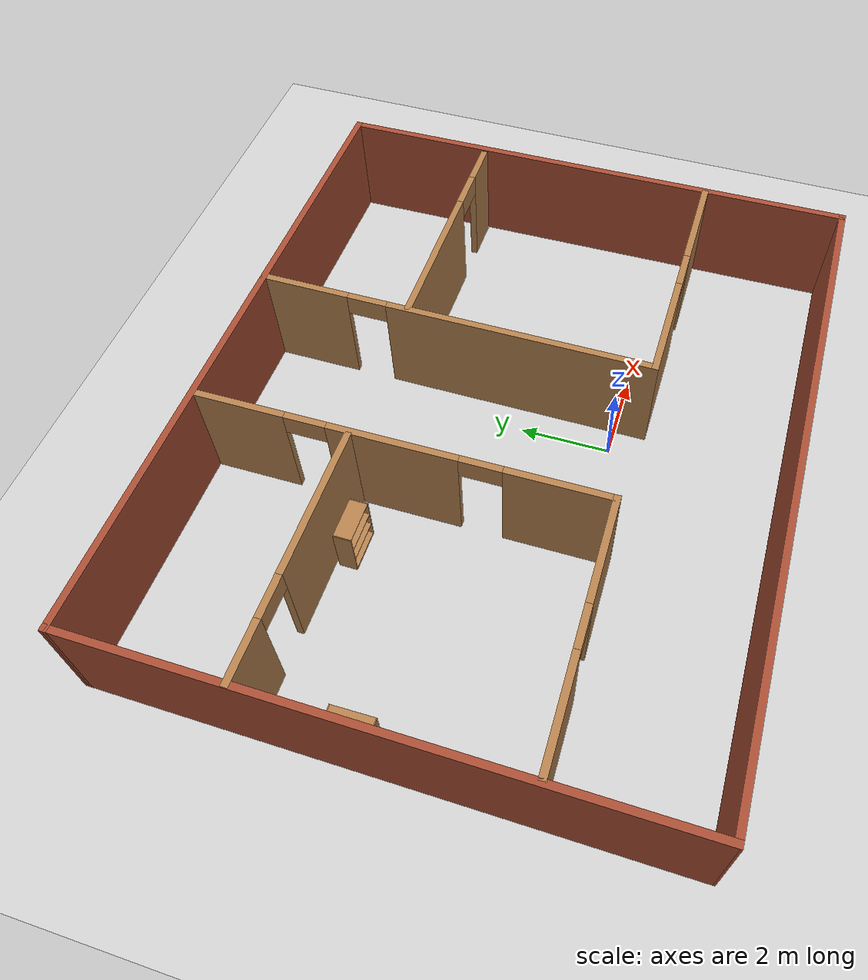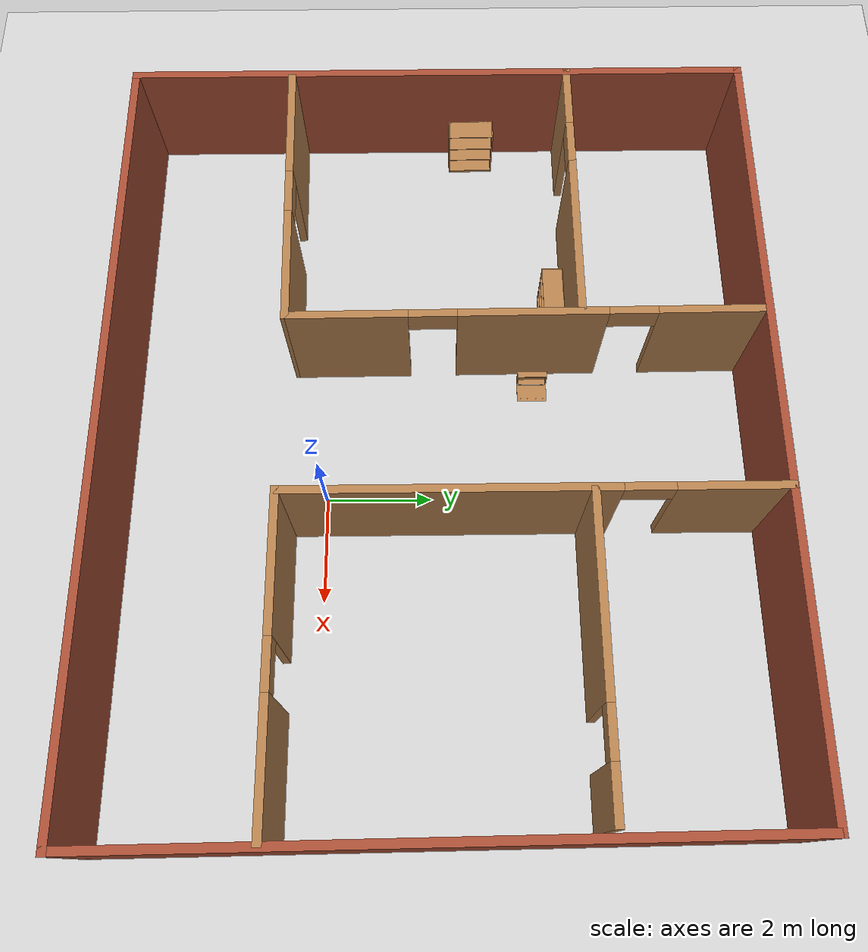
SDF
<sdf version="1.7">
 <world name="default">
  <light name="sun" type="directional">
   <pose>0 0 10 0 -0 0</pose>
   <diffuse>0.8 0.8 0.8 1</diffuse>
   <specular>0.2 0.2 0.2 1</specular>
   <attenuation>
    <range>1000</range>
    <constant>0.9</constant>
    <linear>0.01</linear>
    <quadratic>0.001</quadratic>
   </attenuation>
   <direction>-0.5 0.1 -0.9</direction>
   <spot><inner_angle>0</inner_angle><outer_angle>0</outer_angle><falloff>0</falloff></spot>
  </light>
  <model name="ground_plane">
   <static>1</static>
   <link name="link">
    <collision name="collision">
     <geometry><plane><normal>0 0 1</normal><size>100 100</size></plane></geometry>
     <surface>
      <contact><collide_bitmask>65535</collide_bitmask></contact>
      <friction><ode><mu>100</mu><mu2>50</mu2></ode></friction>
     </surface>
    </collision>
    <visual name="visual">
     <cast_shadows>0</cast_shadows>
     <geometry><plane><normal>0 0 1</normal><size>100 100</size></plane></geometry>
     <material>
      <script><uri>file://media/materials/scripts/gazebo.material</uri><name>Gazebo/Grey</name></script>
     </material>
    </visual>
   </link>
  </model>
  <gravity>0 0 -9.8</gravity>
  <magnetic_field>6e-06 2.3e-05 -4.2e-05</magnetic_field>
  <atmosphere type="adiabatic"/>
  <physics type="ode">
   <max_step_size>0.001</max_step_size>
   <real_time_factor>1</real_time_factor>
   <real_time_update_rate>1000</real_time_update_rate>
  </physics>
  <scene><ambient>0.4 0.4 0.4 1</ambient><background>0.7 0.7 0.7 1</background><shadows>1</shadows></scene>
  <audio><device>default</device></audio>
  <spherical_coordinates>
   <surface_model>EARTH_WGS84</surface_model>
   <latitude_deg>0</latitude_deg>
   <longitude_deg>0</longitude_deg>
   <elevation>0</elevation>
   <heading_deg>0</heading_deg>
  </spherical_coordinates>
  <model name="my_floor">
   <pose>-0.940215 2.19561 0.00367 0 -0 0</pose>
   <link name="Wall_0">
    <collision name="Wall_0_Collision">
     <geometry><box><size>12.25 0.15 2.5</size></box></geometry>
     <pose>0 0 1.25 0 -0 0</pose>
    </collision>
    <visual name="Wall_0_Visual">
     <pose>0 0 1.25 0 -0 0</pose>
     <geometry><box><size>12.25 0.15 2.5</size></box></geometry>
     <material>
      <script><uri>file://media/materials/scripts/gazebo.material</uri><name>Gazebo/Bricks</name></script>
      <ambient>1 1 1 1</ambient>
     </material>
     <meta><layer>0</layer></meta>
    </visual>
    <pose>-7.28239 0.011244 0 0 -0 -1.5708</pose>
   </link>
   <link name="Wall_1">
    <collision name="Wall_1_Collision">
     <geometry><box><size>14.7143 0.15 2.5</size></box></geometry>
     <pose>0 0 1.25 0 -0 0</pose>
    </collision>
    <visual name="Wall_1_Visual">
     <pose>0 0 1.25 0 -0 0</pose>
     <geometry><box><size>14.7143 0.15 2.5</size></box></geometry>
     <material>
      <script><uri>file://media/materials/scripts/gazebo.material</uri><name>Gazebo/Bricks</name></script>
      <ambient>1 1 1 1</ambient>
     </material>
     <meta><layer>0</layer></meta>
    </visual>
    <pose>-0.000225 -6.04978 0 0 -0 -0.001513</pose>
   </link>
   <link name="Wall_11">
    <pose>1.58107 1.58197 0 0 -0 -1.5708</pose>
    <visual name="Wall_11_Visual_0">
     <pose>-3.46708 0 1.25 0 -0 0</pose>
     <geometry><box><size>2.06583 0.15 2.5</size></box></geometry>
     <material>
      <script><uri>file://media/materials/scripts/gazebo.material</uri><name>Gazebo/Wood</name></script>
      <ambient>1 1 1 1</ambient>
     </material>
     <meta><layer>0</layer></meta>
    </visual>
    <collision name="Wall_11_Collision_0">
     <geometry><box><size>2.06583 0.15 2.5</size></box></geometry>
     <pose>-3.46708 0 1.25 0 -0 0</pose>
    </collision>
    <visual name="Wall_11_Visual_1">
     <pose>1.48291 0 1.25 0 -0 0</pose>
     <geometry><box><size>6.03417 0.15 2.5</size></box></geometry>
     <material>
      <script><uri>file://media/materials/scripts/gazebo.material</uri><name>Gazebo/Wood</name></script>
      <ambient>1 1 1 1</ambient>
     </material>
     <meta><layer>0</layer></meta>
    </visual>
    <collision name="Wall_11_Collision_1">
     <geometry><box><size>6.03417 0.15 2.5</size></box></geometry>
     <pose>1.48291 0 1.25 0 -0 0</pose>
    </collision>
    <visual name="Wall_11_Visual_2">
     <pose>-1.98417 0 2.25 0 -0 0</pose>
     <geometry><box><size>0.9 0.15 0.5</size></box></geometry>
     <material>
      <script><uri>file://media/materials/scripts/gazebo.material</uri><name>Gazebo/Wood</name></script>
      <ambient>1 1 1 1</ambient>
     </material>
     <meta><layer>0</layer></meta>
    </visual>
    <collision name="Wall_11_Collision_2">
     <geometry><box><size>0.9 0.15 0.5</size></box></geometry>
     <pose>-1.98417 0 2.25 0 -0 0</pose>
    </collision>
   </link>
   <link name="Wall_12">
    <pose>4.38107 -2.84303 0 0 -0 0</pose>
    <visual name="Wall_12_Visual_0">
     <pose>-1.59421 0 1.25 0 -0 0</pose>
     <geometry><box><size>2.56158 0.15 2.5</size></box></geometry>
     <material>
      <script><uri>file://media/materials/scripts/gazebo.material</uri><name>Gazebo/Wood</name></script>
      <ambient>1 1 1 1</ambient>
     </material>
     <meta><layer>0</layer></meta>
    </visual>
    <collision name="Wall_12_Collision_0">
     <geometry><box><size>2.56158 0.15 2.5</size></box></geometry>
     <pose>-1.59421 0 1.25 0 -0 0</pose>
    </collision>
    <visual name="Wall_12_Visual_1">
     <pose>1.73079 0 1.25 0 -0 0</pose>
     <geometry><box><size>2.28842 0.15 2.5</size></box></geometry>
     <material>
      <script><uri>file://media/materials/scripts/gazebo.material</uri><name>Gazebo/Wood</name></script>
      <ambient>1 1 1 1</ambient>
     </material>
     <meta><layer>0</layer></meta>
    </visual>
    <collision name="Wall_12_Collision_1">
     <geometry><box><size>2.28842 0.15 2.5</size></box></geometry>
     <pose>1.73079 0 1.25 0 -0 0</pose>
    </collision>
    <visual name="Wall_12_Visual_2">
     <pose>0.136581 0 2.25 0 -0 0</pose>
     <geometry><box><size>0.9 0.15 0.5</size></box></geometry>
     <material>
      <script><uri>file://media/materials/scripts/gazebo.material</uri><name>Gazebo/Wood</name></script>
      <ambient>1 1 1 1</ambient>
     </material>
     <meta><layer>0</layer></meta>
    </visual>
    <collision name="Wall_12_Collision_2">
     <geometry><box><size>0.9 0.15 0.5</size></box></geometry>
     <pose>0.136581 0 2.25 0 -0 0</pose>
    </collision>
   </link>
   <link name="Wall_14">
    <pose>4.31641 2.62789 0 0 -0 0</pose>
    <visual name="Wall_14_Visual_0">
     <pose>-0.946256 0 1.25 0 -0 0</pose>
     <geometry><box><size>3.60749 0.15 2.5</size></box></geometry>
     <material>
      <script><uri>file://media/materials/scripts/gazebo.material</uri><name>Gazebo/Wood</name></script>
      <ambient>1 1 1 1</ambient>
     </material>
     <meta><layer>0</layer></meta>
    </visual>
    <collision name="Wall_14_Collision_0">
     <geometry><box><size>3.60749 0.15 2.5</size></box></geometry>
     <pose>-0.946256 0 1.25 0 -0 0</pose>
    </collision>
    <visual name="Wall_14_Visual_1">
     <pose>2.25374 0 1.25 0 -0 0</pose>
     <geometry><box><size>0.992513 0.15 2.5</size></box></geometry>
     <material>
      <script><uri>file://media/materials/scripts/gazebo.material</uri><name>Gazebo/Wood</name></script>
      <ambient>1 1 1 1</ambient>
     </material>
     <meta><layer>0</layer></meta>
    </visual>
    <collision name="Wall_14_Collision_1">
     <geometry><box><size>0.992513 0.15 2.5</size></box></geometry>
     <pose>2.25374 0 1.25 0 -0 0</pose>
    </collision>
    <visual name="Wall_14_Visual_2">
     <pose>1.30749 0 2.25 0 -0 0</pose>
     <geometry><box><size>0.9 0.15 0.5</size></box></geometry>
     <material>
      <script><uri>file://media/materials/scripts/gazebo.material</uri><name>Gazebo/Wood</name></script>
      <ambient>1 1 1 1</ambient>
     </material>
     <meta><layer>0</layer></meta>
    </visual>
    <collision name="Wall_14_Collision_2">
     <geometry><box><size>0.9 0.15 0.5</size></box></geometry>
     <pose>1.30749 0 2.25 0 -0 0</pose>
    </collision>
   </link>
   <link name="Wall_2">
    <collision name="Wall_2_Collision">
     <geometry><box><size>12.2006 0.15 2.5</size></box></geometry>
     <pose>0 0 1.25 0 -0 0</pose>
    </collision>
    <visual name="Wall_2_Visual">
     <pose>0 0 1.25 0 -0 0</pose>
     <geometry><box><size>12.2006 0.15 2.5</size></box></geometry>
     <material>
      <script><uri>file://media/materials/scripts/gazebo.material</uri><name>Gazebo/Bricks</name></script>
      <ambient>1 1 1 1</ambient>
     </material>
     <meta><layer>0</layer></meta>
    </visual>
    <pose>7.21544 -0.03585 0 0 -0 1.58183</pose>
   </link>
   <link name="Wall_3">
    <collision name="Wall_3_Collision">
     <geometry><box><size>14.5815 0.15 2.5</size></box></geometry>
     <pose>0 0 1.25 0 -0 0</pose>
    </collision>
    <visual name="Wall_3_Visual">
     <pose>0 0 1.25 0 -0 0</pose>
     <geometry><box><size>14.5815 0.15 2.5</size></box></geometry>
     <material>
      <script><uri>file://media/materials/scripts/gazebo.material</uri><name>Gazebo/Bricks</name></script>
      <ambient>1 1 1 1</ambient>
     </material>
     <meta><layer>0</layer></meta>
    </visual>
    <pose>-0.066725 6.02517 0 0 -0 3.13659</pose>
   </link>
   <link name="Wall_5">
    <pose>-1.80807 1.57193 0 0 -0 -1.56393</pose>
    <visual name="Wall_5_Visual_0">
     <pose>-3.45113 0 1.25 0 -0 0</pose>
     <geometry><box><size>2.03819 0.15 2.5</size></box></geometry>
     <material>
      <script><uri>file://media/materials/scripts/gazebo.material</uri><name>Gazebo/Wood</name></script>
      <ambient>1 1 1 1</ambient>
     </material>
     <meta><layer>0</layer></meta>
    </visual>
    <collision name="Wall_5_Collision_0">
     <geometry><box><size>2.03819 0.15 2.5</size></box></geometry>
     <pose>-3.45113 0 1.25 0 -0 0</pose>
    </collision>
    <visual name="Wall_5_Visual_1">
     <pose>-0.142034 0 1.25 0 -0 0</pose>
     <geometry><box><size>2.78001 0.15 2.5</size></box></geometry>
     <material>
      <script><uri>file://media/materials/scripts/gazebo.material</uri><name>Gazebo/Wood</name></script>
      <ambient>1 1 1 1</ambient>
     </material>
     <meta><layer>0</layer></meta>
    </visual>
    <collision name="Wall_5_Collision_1">
     <geometry><box><size>2.78001 0.15 2.5</size></box></geometry>
     <pose>-0.142034 0 1.25 0 -0 0</pose>
    </collision>
    <visual name="Wall_5_Visual_2">
     <pose>3.3091 0 1.25 0 -0 0</pose>
     <geometry><box><size>2.32226 0.15 2.5</size></box></geometry>
     <material>
      <script><uri>file://media/materials/scripts/gazebo.material</uri><name>Gazebo/Wood</name></script>
      <ambient>1 1 1 1</ambient>
     </material>
     <meta><layer>0</layer></meta>
    </visual>
    <collision name="Wall_5_Collision_2">
     <geometry><box><size>2.32226 0.15 2.5</size></box></geometry>
     <pose>3.3091 0 1.25 0 -0 0</pose>
    </collision>
    <visual name="Wall_5_Visual_3">
     <pose>-1.98204 0 2.25 0 -0 0</pose>
     <geometry><box><size>0.9 0.15 0.5</size></box></geometry>
     <material>
      <script><uri>file://media/materials/scripts/gazebo.material</uri><name>Gazebo/Wood</name></script>
      <ambient>1 1 1 1</ambient>
     </material>
     <meta><layer>0</layer></meta>
    </visual>
    <collision name="Wall_5_Collision_3">
     <geometry><box><size>0.9 0.15 0.5</size></box></geometry>
     <pose>-1.98204 0 2.25 0 -0 0</pose>
    </collision>
    <visual name="Wall_5_Visual_4">
     <pose>1.69797 0 2.25 0 -0 0</pose>
     <geometry><box><size>0.9 0.15 0.5</size></box></geometry>
     <material>
      <script><uri>file://media/materials/scripts/gazebo.material</uri><name>Gazebo/Wood</name></script>
      <ambient>1 1 1 1</ambient>
     </material>
     <meta><layer>0</layer></meta>
    </visual>
    <collision name="Wall_5_Collision_4">
     <geometry><box><size>0.9 0.15 0.5</size></box></geometry>
     <pose>1.69797 0 2.25 0 -0 0</pose>
    </collision>
   </link>
   <link name="Wall_6">
    <pose>-4.48318 -2.86312 0 0 -0 -3.12672</pose>
    <visual name="Wall_6_Visual_0">
     <pose>-1.6122 0 1.25 0 -0 0</pose>
     <geometry><box><size>2.33674 0.15 2.5</size></box></geometry>
     <material>
      <script><uri>file://media/materials/scripts/gazebo.material</uri><name>Gazebo/Wood</name></script>
      <ambient>1 1 1 1</ambient>
     </material>
     <meta><layer>0</layer></meta>
    </visual>
    <collision name="Wall_6_Collision_0">
     <geometry><box><size>2.33674 0.15 2.5</size></box></geometry>
     <pose>-1.6122 0 1.25 0 -0 0</pose>
    </collision>
    <visual name="Wall_6_Visual_1">
     <pose>1.61837 0 1.25 0 -0 0</pose>
     <geometry><box><size>2.32441 0.15 2.5</size></box></geometry>
     <material>
      <script><uri>file://media/materials/scripts/gazebo.material</uri><name>Gazebo/Wood</name></script>
      <ambient>1 1 1 1</ambient>
     </material>
     <meta><layer>0</layer></meta>
    </visual>
    <collision name="Wall_6_Collision_1">
     <geometry><box><size>2.32441 0.15 2.5</size></box></geometry>
     <pose>1.61837 0 1.25 0 -0 0</pose>
    </collision>
    <visual name="Wall_6_Visual_2">
     <pose>0.006168 0 2.25 0 -0 0</pose>
     <geometry><box><size>0.9 0.15 0.5</size></box></geometry>
     <material>
      <script><uri>file://media/materials/scripts/gazebo.material</uri><name>Gazebo/Wood</name></script>
      <ambient>1 1 1 1</ambient>
     </material>
     <meta><layer>0</layer></meta>
    </visual>
    <collision name="Wall_6_Collision_2">
     <geometry><box><size>0.9 0.15 0.5</size></box></geometry>
     <pose>0.006168 0 2.25 0 -0 0</pose>
    </collision>
   </link>
   <link name="Wall_9">
    <pose>-4.59391 2.60778 0 0 -0 0</pose>
    <visual name="Wall_9_Visual_0">
     <pose>-2.09273 0 1.25 0 -0 0</pose>
     <geometry><box><size>1.31454 0.15 2.5</size></box></geometry>
     <material>
      <script><uri>file://media/materials/scripts/gazebo.material</uri><name>Gazebo/Wood</name></script>
      <ambient>1 1 1 1</ambient>
     </material>
     <meta><layer>0</layer></meta>
    </visual>
    <collision name="Wall_9_Collision_0">
     <geometry><box><size>1.31454 0.15 2.5</size></box></geometry>
     <pose>-2.09273 0 1.25 0 -0 0</pose>
    </collision>
    <visual name="Wall_9_Visual_1">
     <pose>1.10727 0 1.25 0 -0 0</pose>
     <geometry><box><size>3.28546 0.15 2.5</size></box></geometry>
     <material>
      <script><uri>file://media/materials/scripts/gazebo.material</uri><name>Gazebo/Wood</name></script>
      <ambient>1 1 1 1</ambient>
     </material>
     <meta><layer>0</layer></meta>
    </visual>
    <collision name="Wall_9_Collision_1">
     <geometry><box><size>3.28546 0.15 2.5</size></box></geometry>
     <pose>1.10727 0 1.25 0 -0 0</pose>
    </collision>
    <visual name="Wall_9_Visual_2">
     <pose>-0.98546 0 2.25 0 -0 0</pose>
     <geometry><box><size>0.9 0.15 0.5</size></box></geometry>
     <material>
      <script><uri>file://media/materials/scripts/gazebo.material</uri><name>Gazebo/Wood</name></script>
      <ambient>1 1 1 1</ambient>
     </material>
     <meta><layer>0</layer></meta>
    </visual>
    <collision name="Wall_9_Collision_2">
     <geometry><box><size>0.9 0.15 0.5</size></box></geometry>
     <pose>-0.98546 0 2.25 0 -0 0</pose>
    </collision>
   </link>
   <static>1</static>
  </model>
  <model name="bookshelf">
   <static>1</static>
   <link name="link">
    <inertial><mass>1</mass></inertial>
    <collision name="back">
     <pose>0 0.005 0.6 0 -0 0</pose>
     <geometry><box><size>0.9 0.01 1.2</size></box></geometry>
    </collision>
    <visual name="visual1">
     <pose>0 0.005 0.6 0 -0 0</pose>
     <geometry><box><size>0.9 0.01 1.2</size></box></geometry>
     <material>
      <script><uri>file://media/materials/scripts/gazebo.material</uri><name>Gazebo/Wood</name></script>
     </material>
    </visual>
    <collision name="left_side">
     <pose>0.45 -0.195 0.6 0 -0 0</pose>
     <geometry><box><size>0.02 0.4 1.2</size></box></geometry>
    </collision>
    <visual name="visual2">
     <pose>0.45 -0.195 0.6 0 -0 0</pose>
     <geometry><box><size>0.02 0.4 1.2</size></box></geometry>
     <material>
      <script><uri>file://media/materials/scripts/gazebo.material</uri><name>Gazebo/Wood</name></script>
     </material>
    </visual>
    <collision name="right_side">
     <pose>-0.45 -0.195 0.6 0 -0 0</pose>
     <geometry><box><size>0.02 0.4 1.2</size></box></geometry>
    </collision>
    <visual name="visual3">
     <pose>-0.45 -0.195 0.6 0 -0 0</pose>
     <geometry><box><size>0.02 0.4 1.2</size></box></geometry>
     <material>
      <script><uri>file://media/materials/scripts/gazebo.material</uri><name>Gazebo/Wood</name></script>
     </material>
    </visual>
    <collision name="bottom">
     <pose>0 -0.195 0.03 0 -0 0</pose>
     <geometry><box><size>0.88 0.4 0.06</size></box></geometry>
    </collision>
    <visual name="visual4">
     <pose>0 -0.195 0.03 0 -0 0</pose>
     <geometry><box><size>0.88 0.4 0.06</size></box></geometry>
     <material>
      <script><uri>file://media/materials/scripts/gazebo.material</uri><name>Gazebo/Wood</name></script>
     </material>
    </visual>
    <collision name="top">
     <pose>0 -0.195 1.19 0 -0 0</pose>
     <geometry><box><size>0.88 0.4 0.02</size></box></geometry>
    </collision>
    <visual name="visual5">
     <pose>0 -0.195 1.19 0 -0 0</pose>
     <geometry><box><size>0.88 0.4 0.02</size></box></geometry>
     <material>
      <script><uri>file://media/materials/scripts/gazebo.material</uri><name>Gazebo/Wood</name></script>
     </material>
    </visual>
    <collision name="low_shelf">
     <pose>0 -0.195 0.43 0 -0 0</pose>
     <geometry><box><size>0.88 0.4 0.02</size></box></geometry>
    </collision>
    <visual name="visual6">
     <pose>0 -0.195 0.43 0 -0 0</pose>
     <geometry><box><size>0.88 0.4 0.02</size></box></geometry>
     <material>
      <script><uri>file://media/materials/scripts/gazebo.material</uri><name>Gazebo/Wood</name></script>
     </material>
    </visual>
    <collision name="high_shelf">
     <pose>0 -0.195 0.8 0 -0 0</pose>
     <geometry><box><size>0.88 0.4 0.02</size></box></geometry>
    </collision>
    <visual name="visual7">
     <pose>0 -0.195 0.8 0 -0 0</pose>
     <geometry><box><size>0.88 0.4 0.02</size></box></geometry>
     <material>
      <script><uri>file://media/materials/scripts/gazebo.material</uri><name>Gazebo/Wood</name></script>
     </material>
    </visual>
   </link>
   <pose>-3.96313 4.64573 0 0 -0 0</pose>
  </model>
  <model name="bookshelf_0">
   <static>1</static>
   <link name="link">
    <inertial><mass>1</mass></inertial>
    <collision name="back">
     <pose>0 0.005 0.6 0 -0 0</pose>
     <geometry><box><size>0.9 0.01 1.2</size></box></geometry>
    </collision>
    <visual name="visual1">
     <pose>0 0.005 0.6 0 -0 0</pose>
     <geometry><box><size>0.9 0.01 1.2</size></box></geometry>
     <material>
      <script><uri>file://media/materials/scripts/gazebo.material</uri><name>Gazebo/Wood</name></script>
     </material>
    </visual>
    <collision name="left_side">
     <pose>0.45 -0.195 0.6 0 -0 0</pose>
     <geometry><box><size>0.02 0.4 1.2</size></box></geometry>
    </collision>
    <visual name="visual2">
     <pose>0.45 -0.195 0.6 0 -0 0</pose>
     <geometry><box><size>0.02 0.4 1.2</size></box></geometry>
     <material>
      <script><uri>file://media/materials/scripts/gazebo.material</uri><name>Gazebo/Wood</name></script>
     </material>
    </visual>
    <collision name="right_side">
     <pose>-0.45 -0.195 0.6 0 -0 0</pose>
     <geometry><box><size>0.02 0.4 1.2</size></box></geometry>
    </collision>
    <visual name="visual3">
     <pose>-0.45 -0.195 0.6 0 -0 0</pose>
     <geometry><box><size>0.02 0.4 1.2</size></box></geometry>
     <material>
      <script><uri>file://media/materials/scripts/gazebo.material</uri><name>Gazebo/Wood</name></script>
     </material>
    </visual>
    <collision name="bottom">
     <pose>0 -0.195 0.03 0 -0 0</pose>
     <geometry><box><size>0.88 0.4 0.06</size></box></geometry>
    </collision>
    <visual name="visual4">
     <pose>0 -0.195 0.03 0 -0 0</pose>
     <geometry><box><size>0.88 0.4 0.06</size></box></geometry>
     <material>
      <script><uri>file://media/materials/scripts/gazebo.material</uri><name>Gazebo/Wood</name></script>
     </material>
    </visual>
    <collision name="top">
     <pose>0 -0.195 1.19 0 -0 0</pose>
     <geometry><box><size>0.88 0.4 0.02</size></box></geometry>
    </collision>
    <visual name="visual5">
     <pose>0 -0.195 1.19 0 -0 0</pose>
     <geometry><box><size>0.88 0.4 0.02</size></box></geometry>
     <material>
      <script><uri>file://media/materials/scripts/gazebo.material</uri><name>Gazebo/Wood</name></script>
     </material>
    </visual>
    <collision name="low_shelf">
     <pose>0 -0.195 0.43 0 -0 0</pose>
     <geometry><box><size>0.88 0.4 0.02</size></box></geometry>
    </collision>
    <visual name="visual6">
     <pose>0 -0.195 0.43 0 -0 0</pose>
     <geometry><box><size>0.88 0.4 0.02</size></box></geometry>
     <material>
      <script><uri>file://media/materials/scripts/gazebo.material</uri><name>Gazebo/Wood</name></script>
     </material>
    </visual>
    <collision name="high_shelf">
     <pose>0 -0.195 0.8 0 -0 0</pose>
     <geometry><box><size>0.88 0.4 0.02</size></box></geometry>
    </collision>
    <visual name="visual7">
     <pose>0 -0.195 0.8 0 -0 0</pose>
     <geometry><box><size>0.88 0.4 0.02</size></box></geometry>
     <material>
      <script><uri>file://media/materials/scripts/gazebo.material</uri><name>Gazebo/Wood</name></script>
     </material>
    </visual>
   </link>
   <pose>-8.01451 2.9033 -0 0 -0 1.58535</pose>
  </model>
  <model name="wooden_case">
   <link name="base">
    <pose>0 0 0.024 0 -0 0</pose>
    <inertial>
     <pose>-0.022184 0 0.171592 0 -0 0</pose>
     <mass>3.96264</mass>
     <inertia>
      <ixx>0.213536</ixx>
      <ixy>0</ixy>
      <ixz>0.000779377</ixz>
      <iyy>0.0708943</iyy>
      <iyz>0</iyz>
      <izz>0.154604</izz>
     </inertia>
    </inertial>
    <collision name="collision_back">
     <pose>-0.053975 0 0.1778 0 -0 0</pose>
     <geometry><box><size>0.01905 0.5461 0.3175</size></box></geometry>
     <surface>
      <contact>
       <poissons_ratio>0.347</poissons_ratio>
       <elastic_modulus>8.8e+09</elastic_modulus>
       <ode><kp>100000</kp><kd>100</kd><max_vel>100</max_vel><min_depth>0.001</min_depth></ode>
      </contact>
      <friction>
       <torsional>
        <coefficient>1</coefficient>
        <use_patch_radius>0</use_patch_radius>
        <surface_radius>0.01</surface_radius>
       </torsional>
      </friction>
     </surface>
    </collision>
    <visual name="visual_back">
     <pose>-0.053975 0 0.1778 0 -0 0</pose>
     <geometry><box><size>0.01905 0.5461 0.3175</size></box></geometry>
     <material>
      <script><uri>file://media/materials/scripts/gazebo.material</uri><name>Gazebo/Wood</name></script>
     </material>
    </visual>
    <collision name="collision_bottom">
     <pose>0 0 0.009525 0 -0 0</pose>
     <geometry><box><size>0.127 0.5842 0.01905</size></box></geometry>
     <surface>
      <contact>
       <poissons_ratio>0.347</poissons_ratio>
       <elastic_modulus>8.8e+09</elastic_modulus>
       <ode><kp>100000</kp><kd>100</kd><max_vel>100</max_vel><min_depth>0.001</min_depth></ode>
      </contact>
      <friction>
       <torsional>
        <coefficient>1</coefficient>
        <use_patch_radius>0</use_patch_radius>
        <surface_radius>0.01</surface_radius>
       </torsional>
      </friction>
     </surface>
    </collision>
    <visual name="visual_bottom">
     <pose>0 0 0.009525 0 -0 0</pose>
     <geometry><box><size>0.127 0.5842 0.01905</size></box></geometry>
     <material>
      <script><uri>file://media/materials/scripts/gazebo.material</uri><name>Gazebo/Wood</name></script>
     </material>
    </visual>
    <collision name="collision_top">
     <pose>0 0 0.346075 0 -0 0</pose>
     <geometry><box><size>0.127 0.5842 0.01905</size></box></geometry>
     <surface>
      <contact>
       <poissons_ratio>0.347</poissons_ratio>
       <elastic_modulus>8.8e+09</elastic_modulus>
       <ode><kp>100000</kp><kd>100</kd><max_vel>100</max_vel><min_depth>0.001</min_depth></ode>
      </contact>
      <friction>
       <torsional>
        <coefficient>1</coefficient>
        <use_patch_radius>0</use_patch_radius>
        <surface_radius>0.01</surface_radius>
       </torsional>
      </friction>
     </surface>
    </collision>
    <visual name="visual_top">
     <pose>0 0 0.346075 0 -0 0</pose>
     <geometry><box><size>0.127 0.5842 0.01905</size></box></geometry>
     <material>
      <script><uri>file://media/materials/scripts/gazebo.material</uri><name>Gazebo/Wood</name></script>
     </material>
    </visual>
    <collision name="collision_left">
     <pose>0 -0.282575 0.1778 0 -0 0</pose>
     <geometry><box><size>0.127 0.01905 0.3175</size></box></geometry>
     <surface>
      <contact>
       <poissons_ratio>0.347</poissons_ratio>
       <elastic_modulus>8.8e+09</elastic_modulus>
       <ode><kp>100000</kp><kd>100</kd><max_vel>100</max_vel><min_depth>0.001</min_depth></ode>
      </contact>
      <friction>
       <torsional>
        <coefficient>1</coefficient>
        <use_patch_radius>0</use_patch_radius>
        <surface_radius>0.01</surface_radius>
       </torsional>
      </friction>
     </surface>
    </collision>
    <visual name="visual_left">
     <pose>0 -0.282575 0.1778 0 -0 0</pose>
     <geometry><box><size>0.127 0.01905 0.3175</size></box></geometry>
     <material>
      <script><uri>file://media/materials/scripts/gazebo.material</uri><name>Gazebo/Wood</name></script>
     </material>
    </visual>
    <collision name="collision_right">
     <pose>0 0.282575 0.1778 0 -0 0</pose>
     <geometry><box><size>0.127 0.01905 0.3175</size></box></geometry>
     <surface>
      <contact>
       <poissons_ratio>0.347</poissons_ratio>
       <elastic_modulus>8.8e+09</elastic_modulus>
       <ode><kp>100000</kp><kd>100</kd><max_vel>100</max_vel><min_depth>0.001</min_depth></ode>
      </contact>
      <friction>
       <torsional>
        <coefficient>1</coefficient>
        <use_patch_radius>0</use_patch_radius>
        <surface_radius>0.01</surface_radius>
       </torsional>
      </friction>
     </surface>
    </collision>
    <visual name="visual_right">
     <pose>0 0.282575 0.1778 0 -0 0</pose>
     <geometry><box><size>0.127 0.01905 0.3175</size></box></geometry>
     <material>
      <script><uri>file://media/materials/scripts/gazebo.material</uri><name>Gazebo/Wood</name></script>
     </material>
    </visual>
    <collision name="collision_block_left">
     <pose>0.0095 -0.2151 -0.012 0 -0 0</pose>
     <geometry><box><size>0.108 0.05 0.024</size></box></geometry>
     <surface>
      <contact>
       <poissons_ratio>0.347</poissons_ratio>
       <elastic_modulus>8.8e+09</elastic_modulus>
       <ode><kp>100000</kp><kd>100</kd><max_vel>100</max_vel><min_depth>0.001</min_depth></ode>
      </contact>
      <friction>
       <torsional>
        <coefficient>1</coefficient>
        <use_patch_radius>0</use_patch_radius>
        <surface_radius>0.01</surface_radius>
       </torsional>
      </friction>
     </surface>
    </collision>
    <visual name="visual_block_left">
     <pose>0.0095 -0.2151 -0.012 0 -0 0</pose>
     <geometry><box><size>0.108 0.05 0.024</size></box></geometry>
     <material>
      <script><uri>file://media/materials/scripts/gazebo.material</uri><name>Gazebo/Wood</name></script>
     </material>
    </visual>
    <collision name="collision_block_right">
     <pose>0.0095 0.2151 -0.012 0 -0 0</pose>
     <geometry><box><size>0.108 0.05 0.024</size></box></geometry>
     <surface>
      <contact>
       <poissons_ratio>0.347</poissons_ratio>
       <elastic_modulus>8.8e+09</elastic_modulus>
       <ode><kp>100000</kp><kd>100</kd><max_vel>100</max_vel><min_depth>0.001</min_depth></ode>
      </contact>
      <friction>
       <torsional>
        <coefficient>1</coefficient>
        <use_patch_radius>0</use_patch_radius>
        <surface_radius>0.01</surface_radius>
       </torsional>
      </friction>
     </surface>
    </collision>
    <visual name="visual_block_right">
     <pose>0.0095 0.2151 -0.012 0 -0 0</pose>
     <geometry><box><size>0.108 0.05 0.024</size></box></geometry>
     <material>
      <script><uri>file://media/materials/scripts/gazebo.material</uri><name>Gazebo/Wood</name></script>
     </material>
    </visual>
   </link>
   <link name="lid">
    <pose>0.243775 0 0.009525 0 -0 0</pose>
    <inertial>
     <mass>1.97874</mass>
     <inertia>
      <ixx>0.0563367</ixx>
      <ixy>0</ixy>
      <ixz>0</ixz>
      <iyy>0.020911</iyy>
      <iyz>0</iyz>
      <izz>0.0771281</izz>
     </inertia>
    </inertial>
    <collision name="collision">
     <geometry><box><size>0.3556 0.5842 0.01905</size></box></geometry>
     <surface>
      <contact>
       <poissons_ratio>0.347</poissons_ratio>
       <elastic_modulus>8.8e+09</elastic_modulus>
       <ode><kp>100000</kp><kd>100</kd><max_vel>100</max_vel><min_depth>0.001</min_depth></ode>
      </contact>
      <friction>
       <torsional>
        <coefficient>1</coefficient>
        <use_patch_radius>0</use_patch_radius>
        <surface_radius>0.01</surface_radius>
       </torsional>
      </friction>
     </surface>
    </collision>
    <visual name="visual">
     <geometry><box><size>0.3556 0.5842 0.01905</size></box></geometry>
     <material>
      <script><uri>file://media/materials/scripts/gazebo.material</uri><name>Gazebo/Wood</name></script>
     </material>
    </visual>
    <visual name="tee_nut_1">
     <pose>0.122 -0.216 0 0 -0 0</pose>
     <geometry><cylinder><radius>0.00635</radius><length>0.0192405</length></cylinder></geometry>
     <material>
      <script><uri>file://media/materials/scripts/gazebo.material</uri><name>Gazebo/Grey</name></script>
     </material>
    </visual>
    <visual name="tee_nut_2">
     <pose>0.122 -0.088 0 0 -0 0</pose>
     <geometry><cylinder><radius>0.00635</radius><length>0.0192405</length></cylinder></geometry>
     <material>
      <script><uri>file://media/materials/scripts/gazebo.material</uri><name>Gazebo/Grey</name></script>
     </material>
    </visual>
    <visual name="tee_nut_3">
     <pose>0.122 0.088 0 0 -0 0</pose>
     <geometry><cylinder><radius>0.00635</radius><length>0.0192405</length></cylinder></geometry>
     <material>
      <script><uri>file://media/materials/scripts/gazebo.material</uri><name>Gazebo/Grey</name></script>
     </material>
    </visual>
    <visual name="tee_nut_4">
     <pose>0.122 0.216 0 0 -0 0</pose>
     <geometry><cylinder><radius>0.00635</radius><length>0.0192405</length></cylinder></geometry>
     <material>
      <script><uri>file://media/materials/scripts/gazebo.material</uri><name>Gazebo/Grey</name></script>
     </material>
    </visual>
   </link>
   <joint name="lid_hinge" type="revolute">
    <pose>-0.1778 0 0.01905 0 -0 0</pose>
    <parent>base</parent>
    <child>lid</child>
    <axis>
     <xyz>0 1 0</xyz>
     <limit><upper>0.523599</upper><lower>-1.5708</lower></limit>
     <dynamics><spring_reference>0</spring_reference><spring_stiffness>0</spring_stiffness></dynamics>
    </axis>
   </joint>
   <pose>-2.4863 4.0406 -0.001057 -0 -0.000427 -0.002589</pose>
  </model>
 </world>
</sdf>
